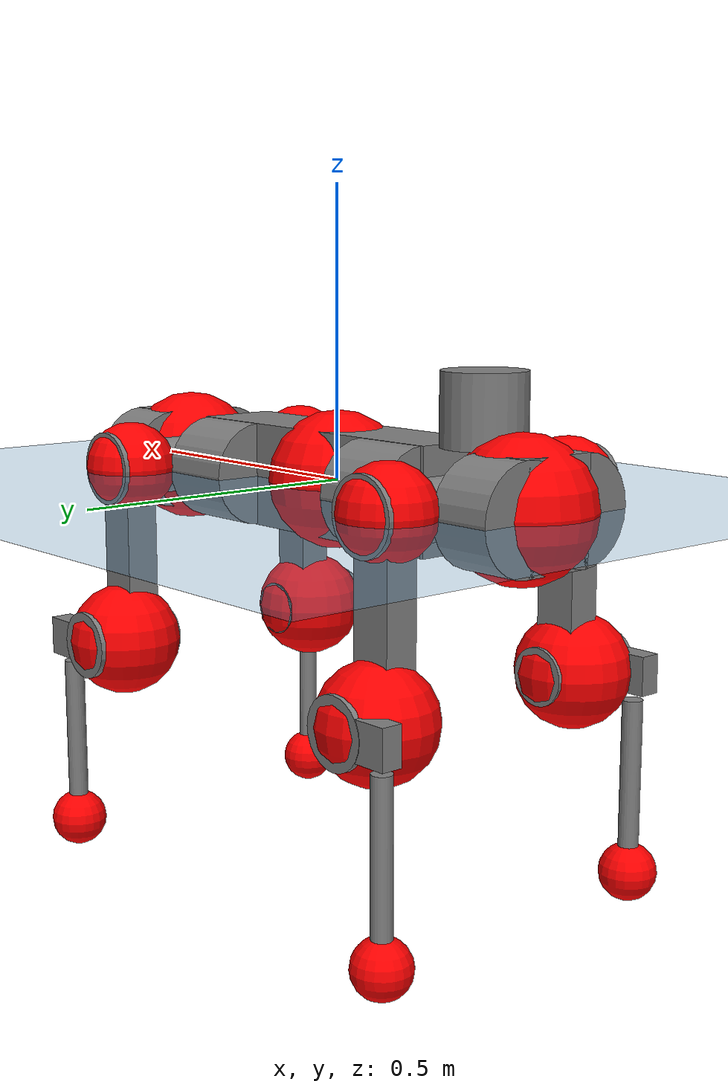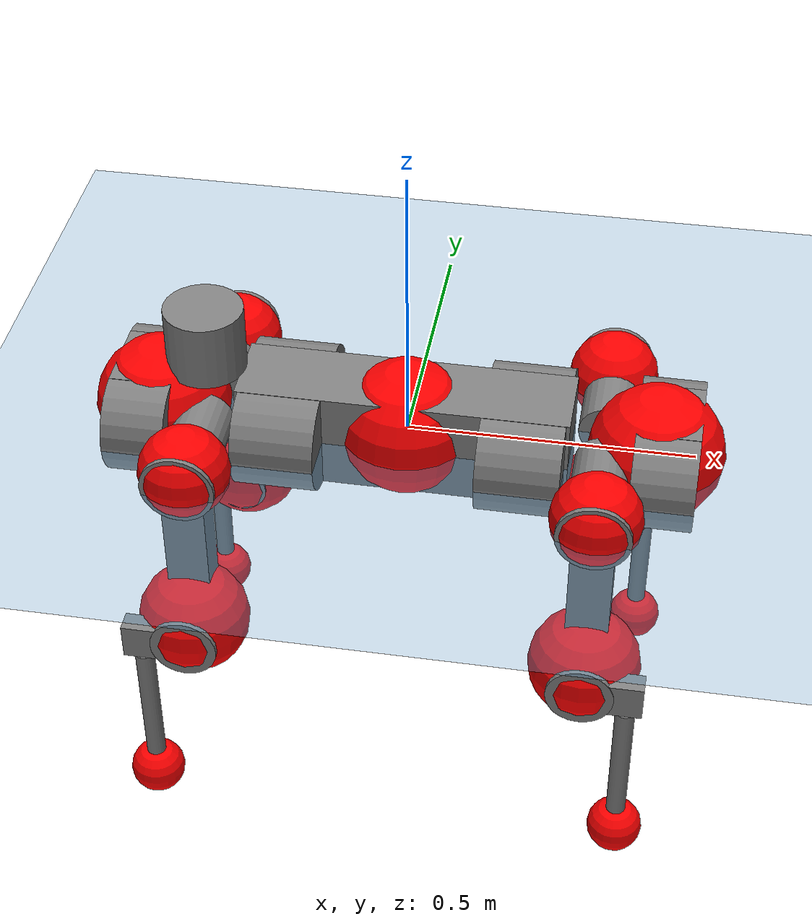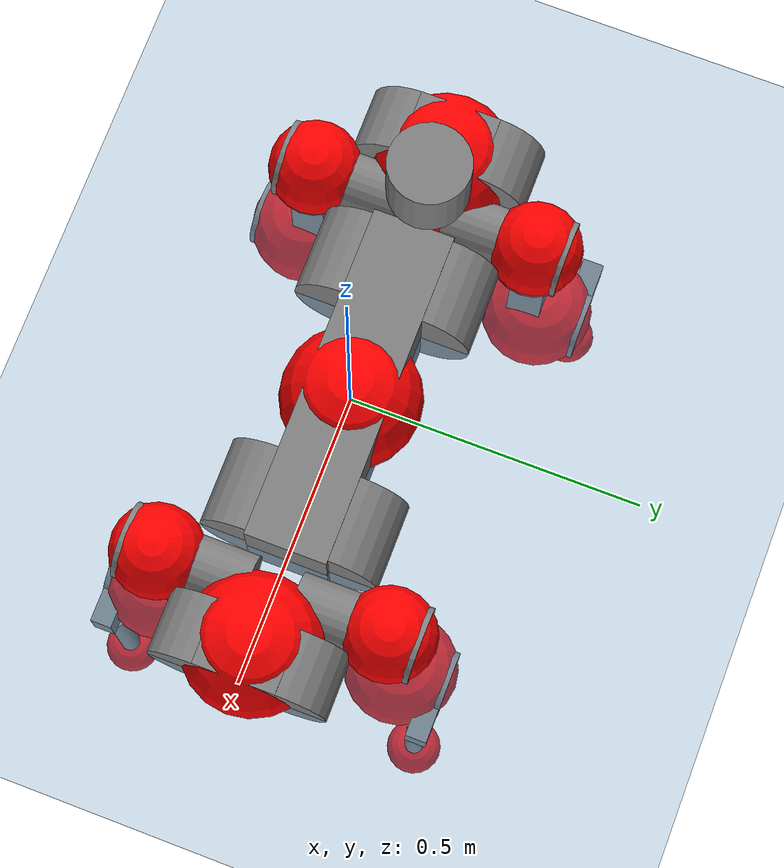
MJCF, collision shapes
<mujoco model="anymal_c">
  <compiler angle="radian" assetdir="assets" balanceinertia="true" inertiafromgeom="false"/>

  <option timestep="0.005" density="1.2" viscosity="2e-05"/>

  <size nkey="1"/>

  <visual>
    <quality shadowsize="8192"/>
    <map shadowclip="0.5"/>
  </visual>

  <default>
    <default class="/">
      <material specular="0" shininess="0.25"/>
      <geom contype="0" conaffinity="0" group="1" solref="-1000 -80"/>
      <site size="0.01 0.005 0.005" group="5"/>
      <general forcelimited="true" forcerange="-80 80" biastype="affine" gainprm="80" biasprm="0 -80 -2"/>
      <default class="anymal_c">
        <joint armature="0.01" damping="0.01" frictionloss="0.1"/>
        <default class="visual">
          <geom type="mesh" group="2"/>
          <default class="visual_zflip"/>
        </default>
        <default class="collision">
          <geom type="cylinder" group="3"/>
          <default class="foot">
            <geom size="0.03 0 0" type="sphere" condim="6" priority="1" friction="0.8 0.02 0.01" solimp="0.015 1 0.03"/>
          </default>
        </default>
      </default>
      <default class="reward_collision_sphere">
        <geom group="5" rgba="1 0 0 1"/>
      </default>
    </default>
  </default>

  <asset>
    <texture type="skybox" colorspace="auto" name="//unnamed_texture_0" builtin="gradient" rgb1="0.95 0.95 0.95" rgb2="0.95 0.95 0.95" width="100" height="600"/>
    <texture type="2d" colorspace="auto" name="texplane" builtin="checker" rgb1="0.345 0.575 0.748" rgb2="0.345 0.575 0.748" markrgb="1 1 1" width="512" height="512"/>
    <texture type="2d" colorspace="linear" name="base" file="base.png"/>
    <texture type="2d" colorspace="linear" name="top_shell" file="top_shell.png"/>
    <texture type="2d" colorspace="linear" name="bottom_shell" file="bottom_shell.png"/>
    <texture type="2d" colorspace="linear" name="remote" file="remote.png"/>
    <texture type="2d" colorspace="linear" name="hatch" file="hatch.png"/>
    <texture type="2d" colorspace="linear" name="handle" file="handle.png"/>
    <texture type="2d" colorspace="linear" name="face" file="face.png"/>
    <texture type="2d" colorspace="linear" name="battery" file="battery.png"/>
    <texture type="2d" colorspace="linear" name="lidar_cage" file="lidar_cage.png"/>
    <texture type="2d" colorspace="linear" name="depth_camera" file="depth_camera.png"/>
    <texture type="2d" colorspace="linear" name="wide_angle_camera" file="wide_angle_camera.png"/>
    <texture type="2d" colorspace="linear" name="lidar" file="lidar.png"/>
    <texture type="2d" colorspace="linear" name="drive" file="drive.png"/>
    <texture type="2d" colorspace="linear" name="hip_l" file="hip_l.png"/>
    <texture type="2d" colorspace="linear" name="shank_l" file="shank_l.png"/>
    <texture type="2d" colorspace="linear" name="foot" file="foot.png"/>
    <texture type="2d" colorspace="linear" name="thigh" file="thigh.png"/>
    <texture type="2d" colorspace="linear" name="shank_r" file="shank_r.png"/>
    <texture type="2d" colorspace="linear" name="hip_r" file="hip_r.png"/>
    <material name="MatPlane" class="/" texture="texplane" texuniform="true" texrepeat="2 2" specular="0.9" shininess="0.5"/>
    <material name="black_plastic" class="/" rgba="0.007 0.007 0.007 1"/>
    <material name="green" class="/" rgba="0.052 0.178 0.033 1"/>
    <material name="red" class="/" rgba="0.178 0.006 0.005 1"/>
    <material name="yellow" class="/" rgba="0.178 0.119 0.006 1"/>
    <material name="lwl" class="/" rgba="0.8 0.8 0.8 1"/>
    <material name="base" class="/" texture="base"/>
    <material name="top_shell" class="/" texture="top_shell"/>
    <material name="bottom_shell" class="/" texture="bottom_shell"/>
    <material name="hip_l" class="/" texture="hip_l"/>
    <material name="thigh" class="/" texture="thigh"/>
    <material name="shank_l" class="/" texture="shank_l"/>
    <material name="foot" class="/" texture="foot"/>
    <material name="hip_r" class="/" texture="hip_r"/>
    <material name="shank" class="/" texture="shank_r"/>
    <material name="hatch" class="/" texture="hatch"/>
    <material name="remote" class="/" texture="remote"/>
    <material name="handle" class="/" texture="handle"/>
    <material name="face" class="/" texture="face"/>
    <material name="depth_camera" class="/" texture="depth_camera"/>
    <material name="wide_angle_camera" class="/" texture="wide_angle_camera"/>
    <material name="battery" class="/" texture="battery"/>
    <material name="lidar_cage" class="/" texture="lidar_cage"/>
    <material name="lidar" class="/" texture="lidar"/>
    <material name="drive" class="/" texture="drive"/>
    <mesh name="base_0" class="/" file="base_0.obj"/>
    <mesh name="base_1" class="/" file="base_1.obj"/>
    <mesh name="base_2" class="/" file="base_2.obj"/>
    <mesh name="base_3" class="/" file="base_3.obj"/>
    <mesh name="base_4" class="/" file="base_4.obj"/>
    <mesh name="base_5" class="/" file="base_5.obj"/>
    <mesh name="top_shell" class="/" file="top_shell.obj"/>
    <mesh name="bottom_shell" class="/" file="bottom_shell.obj"/>
    <mesh name="remote" class="/" file="remote.obj"/>
    <mesh name="handle" class="/" file="handle.obj"/>
    <mesh name="face" class="/" file="face.obj"/>
    <mesh name="wide_angle_camera" class="/" file="wide_angle_camera.obj"/>
    <mesh name="depth_camera" class="/" file="depth_camera.obj"/>
    <mesh name="battery" class="/" file="battery.obj"/>
    <mesh name="lidar_cage" class="/" file="lidar_cage.obj"/>
    <mesh name="lidar" class="/" file="lidar.obj"/>
    <mesh name="drive" class="/" file="drive.obj"/>
    <mesh name="hip_l" class="/" file="hip_l.obj"/>
    <mesh name="thigh" class="/" file="thigh.obj"/>
    <mesh name="shank_l" class="/" file="shank_l.obj"/>
    <mesh name="foot" class="/" file="foot.obj"/>
    <mesh name="hip_r" class="/" file="hip_r.obj"/>
    <mesh name="hatch" class="/" file="hatch.obj"/>
    <mesh name="shank_r" class="/" file="shank_r.obj"/>
  </asset>

  <worldbody>
    <geom name="floor" class="/" size="100 100 0.125" type="plane" group="0" material="MatPlane"/>
    <light name="toplight_shadow" class="/" pos="0 0 5" dir="0.0990148 0.0990148 -0.990148" type="directional" ambient="0.04 0.04 0.04" diffuse="0.55 0.55 0.55" specular="0.12 0.12 0.12"/>
    <light name="toplight_fill" class="/" pos="0 0 5" dir="0.0990148 0.0990148 -0.990148" type="directional" castshadow="false" ambient="0.04 0.04 0.04" diffuse="0.3 0.3 0.3" specular="0.08 0.08 0.08"/>
    <body name="trunk" childclass="anymal_c" pos="-0.00185899 0.000494651 0.00250914" quat="0.999999 -0.000689769 0.00105879 -0.000577729">
      <inertial pos="0.00360726 -0.00092448 0.0518613" quat="0.504343 0.500084 0.501057 0.494466" mass="18.6769" diaginertia="0.53346 0.397186 0.361869"/>
      <joint name="//unnamed_joint_0" type="free" armature="0" damping="0" frictionloss="0"/>
      <geom name="//unnamed_geom_1" class="visual" material="green" mesh="base_0"/>
      <geom name="//unnamed_geom_2" class="visual" material="yellow" mesh="base_1"/>
      <geom name="//unnamed_geom_3" class="visual" material="red" mesh="base_2"/>
      <geom name="//unnamed_geom_4" class="visual" material="black_plastic" mesh="base_3"/>
      <geom name="//unnamed_geom_5" class="visual" material="lwl" mesh="base_4"/>
      <geom name="//unnamed_geom_6" class="visual" material="base" mesh="base_5"/>
      <geom name="trunk_1" class="collision" size="0.288716 0.06969 0.0896014" type="box"/>
      <geom name="trunk_2" class="collision" size="0.0896014 0.0721789" pos="0.210016 0.0639804 0" quat="0.707107 0 0.707107 0"/>
      <geom name="trunk_3" class="collision" size="0.0896014 0.0721789" pos="-0.210016 0.0639804 0" quat="0.707107 0 0.707107 0"/>
      <geom name="trunk_4" class="collision" size="0.0896014 0.0721789" pos="0.210016 -0.0639804 0" quat="0.707107 0 0.707107 0"/>
      <geom name="trunk_5" class="collision" size="0.0896014 0.0721789" pos="-0.210016 -0.0639804 0" quat="0.707107 0 0.707107 0"/>
      <geom name="//unnamed_geom_12" class="visual" material="top_shell" mesh="top_shell"/>
      <geom name="//unnamed_geom_13" class="visual" material="bottom_shell" mesh="bottom_shell"/>
      <geom name="//unnamed_geom_14" class="visual" material="remote" mesh="remote"/>
      <geom name="//unnamed_geom_15" class="visual" material="handle" mesh="handle"/>
      <geom name="//unnamed_geom_16" class="visual" pos="0.400238 0 0" quat="1 0 0 0" material="face" mesh="face"/>
      <geom name="trunk_6" class="collision" size="0.0547564 0.06969 0.0896014" pos="0.453346 0 0" type="box"/>
      <geom name="//unnamed_geom_18" class="collision" size="0.0896014 0.0547564" pos="0.453346 0.0639804 0" quat="0.707107 0 0.707107 0"/>
      <geom name="//unnamed_geom_19" class="collision" size="0.0896014 0.0547564" pos="0.453346 -0.0639804 0" quat="0.707107 0 0.707107 0"/>
      <geom name="//unnamed_geom_20" class="visual" pos="0.445772 0 -0.0334033" quat="0.965926 0 0.258819 0" material="depth_camera" mesh="depth_camera"/>
      <geom name="//unnamed_geom_21" class="visual" pos="0.495349 0 0.0165735" material="wide_angle_camera" mesh="wide_angle_camera"/>
      <geom name="//unnamed_geom_22" class="visual_zflip" pos="-0.400238 0 0" quat="0 0 0 1" material="face" mesh="face"/>
      <geom name="trunk_7" class="collision" size="0.0547564 0.06969 0.0896014" pos="-0.453346 0 0" quat="0 0 0 1" type="box"/>
      <geom name="//unnamed_geom_24" class="collision" size="0.0896014 0.0547564" pos="-0.453346 -0.0639804 0" quat="0 -0.707107 0 0.707107"/>
      <geom name="//unnamed_geom_25" class="collision" size="0.0896014 0.0547564" pos="-0.453346 0.0639804 0" quat="0 -0.707107 0 0.707107"/>
      <geom name="//unnamed_geom_26" class="visual" pos="-0.445772 0 -0.0334033" quat="0 -0.258819 0 0.965926" material="depth_camera" mesh="depth_camera"/>
      <geom name="//unnamed_geom_27" class="visual_zflip" pos="-0.495349 0 0.0165735" quat="0 0 0 1" material="wide_angle_camera" mesh="wide_angle_camera"/>
      <geom name="//unnamed_geom_28" class="visual" material="battery" mesh="battery"/>
      <geom name="//unnamed_geom_29" class="visual" pos="0 0.0692138 0.0310861" quat="0.683013 -0.183013 0.183013 0.683013" material="depth_camera" mesh="depth_camera"/>
      <geom name="//unnamed_geom_30" class="visual" pos="0 -0.0692138 0.0310861" quat="0.683013 0.183013 0.183013 -0.683013" material="depth_camera" mesh="depth_camera"/>
      <geom name="//unnamed_geom_31" class="visual" pos="-0.351476 0 0.081373" quat="1 0 0 0" material="lidar_cage" mesh="lidar_cage"/>
      <geom name="trunk_8" class="collision" size="0.06969 0.0597343" pos="-0.351476 0 0.1478"/>
      <geom name="//unnamed_geom_33" class="visual" pos="-0.351476 -2.02671e-05 0.157432" quat="0.707107 0 0 -0.707107" material="lidar" mesh="lidar"/>
      <geom name="//unnamed_geom_34" class="visual" pos="0.289581 0.0951252 -3.33117e-09" quat="0.258819 0.965926 0 0" material="drive" mesh="drive"/>
      <geom name="//unnamed_geom_35" class="visual" pos="0.289581 -0.0951252 3.33117e-09" quat="0.258819 -0.965926 0 0" material="drive" mesh="drive"/>
      <geom name="//unnamed_geom_36" class="visual" pos="-0.289581 0.0951252 3.33117e-09" quat="0 0 0.965926 -0.258819" material="drive" mesh="drive"/>
      <geom name="//unnamed_geom_37" class="visual" pos="-0.289581 -0.0951252 -3.33117e-09" quat="0 0 -0.965926 -0.258819" material="drive" mesh="drive"/>
      <geom name="//unnamed_geom_38" class="visual" pos="0.112009 0 0.0808194" quat="1 0 0 0" material="hatch" mesh="hatch"/>
      <geom name="//unnamed_geom_39" class="reward_collision_sphere" size="0.119469"/>
      <geom name="//unnamed_geom_40" class="reward_collision_sphere" size="0.119469" pos="0.434517 0 0"/>
      <geom name="//unnamed_geom_41" class="reward_collision_sphere" size="0.119469" pos="-0.434517 0 0"/>
      <site name="imu" pos="0.241306 0.00892654 0.0499789" size="0.00995571"/>
      <camera name="track" pos="0 -1.82801 0" quat="0.707107 0.707107 0 0" mode="trackcom"/>
      <camera name="ego_camera" pos="0.434517 0 -0.0442846" quat="-0.5 -0.5 0.5 0.5"/>
      <body name="LF_HIP" pos="0.288001 0.0933265 -0.00138955" quat="0.258819 0.965926 -0.000111752 -5.56574e-05">
        <inertial pos="0.0550347 -0.0156865 -0.00841159" quat="-0.12793 0.70963 -0.135673 0.67945" mass="2.88231" diaginertia="0.00495735 0.0031255 0.0055839"/>
        <joint name="LF_HAA" pos="0 0 0" axis="0.999997 1.82617e-05 0.002373" range="-0.714294 0.543796" armature="0.00945184" damping="0.0230453" frictionloss="0.0877283"/>
        <geom name="//unnamed_geom_42" class="visual" pos="0 -0.000195958 3.21859e-05" quat="0.258819 -0.965926 0 0" material="hip_l" mesh="hip_l"/>
        <geom name="//unnamed_geom_43" class="visual" pos="0.057839 -0.0694736 -0.041539" quat="0.183013 -0.683013 0.683013 0.183013" material="drive" mesh="drive"/>
        <geom name="//unnamed_geom_44" class="collision" size="0.0497786 0.06969" pos="0.057839 -0.0109313 -0.00764463" quat="-0.353553 -0.612372 0.612372 -0.353553"/>
        <body name="LF_THIGH" pos="0.055414 -0.0661484 -0.0447412" quat="0.182844 -0.683099 0.683046 0.182734">
          <inertial pos="0.0289811 8.16556e-05 -0.269238" quat="0.993121 0.00237647 -0.0841195 0.0814181" mass="2.96618" diaginertia="0.0255287 0.0193642 0.0072023"/>
          <joint name="LF_HFE" pos="0 0 0" axis="0.99999 -0.00339727 -0.00307541" stiffness="0.00267227" range="-3.12342 3.18703" armature="0.00901321" damping="0.0162351" frictionloss="0.0861551"/>
          <geom name="//unnamed_geom_45" class="visual" pos="0.00102638 1.61733e-06 0" quat="0.707107 0 0 -0.707107" material="thigh" mesh="thigh"/>
          <geom name="//unnamed_geom_46" class="collision" size="0.0647121 0.0398228" pos="0.0386237 0 0" quat="0.5 0.5 -0.5 -0.5"/>
          <geom name="//unnamed_geom_47" class="collision" size="0.0373339 0.0298671 0.140688" pos="0.0289678 0 -0.156451" quat="0.707107 0 0 -0.707107" type="box"/>
          <geom name="//unnamed_geom_48" class="visual" pos="0.0968489 0 -0.315528" quat="1 0 0 0" material="drive" mesh="drive"/>
          <geom name="//unnamed_geom_49" class="collision" size="0.0497786 0.06969" pos="0.0292574 0 -0.315528" quat="0.707107 0 0.707107 0"/>
          <geom name="//unnamed_geom_50" class="reward_collision_sphere" size="0.0796457" pos="0.0241398 0 0"/>
          <body name="LF_SHANK" pos="0.0957951 0.000956502 -0.314152" quat="1 0.000129963 0.000879678 -9.2251e-05">
            <inertial pos="0.00519945 -0.0545503 -0.0921165" quat="0.992588 -0.119026 -0.00246548 -0.0243988" mass="0.574992" diaginertia="0.00830049 0.00580075 0.00187162"/>
            <joint name="LF_KFE" pos="0 0 0" axis="1 -0.000818819 -0.000276199" range="-3.09155 3.13336" armature="0.0111098" damping="0.00655514" frictionloss="0.0967503"/>
            <geom name="//unnamed_geom_51" class="visual" pos="0.000334679 0.00178453 0" quat="0.707107 0 0 -0.707107" material="shank_l" mesh="shank_l"/>
            <geom name="LF_kfe_act" class="collision" size="0.0597343 0.0199114" pos="0.0193118 0 0" quat="0.5 0.5 -0.5 -0.5"/>
            <geom name="//unnamed_geom_53" class="collision" size="0.0572443 0.0336005 0.0189158" pos="0.0193118 -0.0525544 0" quat="0.5 0.5 -0.5 -0.5" type="box"/>
            <geom name="//unnamed_geom_54" class="visual" pos="0.0126009 -0.0798117 -0.374172" quat="0.382683 0 0 -0.92388" material="foot" mesh="foot"/>
            <geom name="LF_calf" class="collision" size="0.0174225 0.140626" pos="0.012601 -0.0803868 -0.187086" quat="0.707107 0 0 -0.707107"/>
            <geom name="LF_foot" class="foot" size="0.0299113" pos="0.012601 -0.0803868 -0.349262" quat="0.707107 0 0 -0.707107"/>
            <geom name="//unnamed_geom_57" class="reward_collision_sphere" size="0.0995571" pos="-0.0482796 0 0"/>
            <geom name="//unnamed_geom_58" class="reward_collision_sphere" size="0.0497786" pos="0.012601 -0.0803868 -0.349262"/>
            <site name="LF_foot" class="foot" pos="0.012601 -0.0803868 -0.349262" quat="0.707107 0 0 -0.707107" size="0.00995571"/>
          </body>
        </body>
      </body>
      <body name="RF_HIP" pos="0.289735 -0.0955399 -0.00166306" quat="0.258794 -0.965933 -0.000107137 -2.05261e-06">
        <inertial pos="0.0522995 0.015473 -0.0116499" quat="0.13765 0.677801 0.127106 0.710973" mass="2.79125" diaginertia="0.0048599 0.00317834 0.00538802"/>
        <joint name="RF_HAA" pos="0 0 0" axis="0.999977 0.00427373 0.00522534" range="-0.482911 0.71129" armature="0.00992078" damping="0.00199357" frictionloss="0.112468"/>
        <geom name="//unnamed_geom_59" class="visual" pos="0 0.000195956 3.21858e-05" quat="0.258819 0.965926 0 0" material="hip_r" mesh="hip_r"/>
        <geom name="//unnamed_geom_60" class="visual" pos="0.057839 0.0694736 -0.041539" quat="0.183013 0.683013 0.683013 -0.183013" material="drive" mesh="drive"/>
        <geom name="//unnamed_geom_61" class="collision" size="0.0497786 0.06969" pos="0.057839 0.0109313 -0.00764463" quat="-0.353553 0.612372 0.612372 0.353553"/>
        <body name="RF_THIGH" pos="0.0607731 0.0637331 -0.0473849" quat="0.182593 0.683212 0.682946 -0.182935">
          <inertial pos="0.0299226 -0.00237289 -0.274552" quat="0.991537 -0.00149791 -0.0932192 0.0903413" mass="3.05377" diaginertia="0.0242714 0.0185071 0.00688306"/>
          <joint name="RF_HFE" pos="0 0 0" axis="0.999999 0.00125375 -0.000523446" range="-3.09405 3.12006" armature="0.00885239" damping="0.0111323" frictionloss="0.113204"/>
          <geom name="//unnamed_geom_62" class="visual" pos="0.00102638 1.61733e-06 0" quat="0.707107 0 0 -0.707107" material="thigh" mesh="thigh"/>
          <geom name="//unnamed_geom_63" class="collision" size="0.0647121 0.0398228" pos="0.0386237 0 0" quat="0.5 0.5 0.5 0.5"/>
          <geom name="//unnamed_geom_64" class="collision" size="0.0373339 0.0298671 0.140688" pos="0.0289678 0 -0.156451" quat="0.707107 0 0 0.707107" type="box"/>
          <geom name="//unnamed_geom_65" class="visual" pos="0.0968489 0 -0.315528" quat="1 0 0 0" material="drive" mesh="drive"/>
          <geom name="//unnamed_geom_66" class="collision" size="0.0497786 0.06969" pos="0.0292574 0 -0.315528" quat="0.707107 0 0.707107 0"/>
          <geom name="//unnamed_geom_67" class="reward_collision_sphere" size="0.0796457" pos="0.0241398 0 0"/>
          <body name="RF_SHANK" pos="0.0937969 0.000453847 -0.316551" quat="0.999999 0.00134436 -5.47223e-05 2.68158e-05">
            <inertial pos="0.0035704 0.0559074 -0.089237" quat="0.992662 0.118011 -0.00140892 0.0263266" mass="0.612729" diaginertia="0.00901017 0.00580913 0.00190749"/>
            <joint name="RF_KFE" pos="0 0 0" axis="0.999956 -0.00476966 0.00812769" range="-3.14057 3.0853" armature="0.0108394" damping="0.00841086" frictionloss="0.113424"/>
            <geom name="//unnamed_geom_68" class="visual" pos="0.000334677 -0.00178452 0" quat="0.707107 0 0 0.707107" material="shank" mesh="shank_r"/>
            <geom name="RF_kfe_act" class="collision" size="0.0597343 0.0199114" pos="0.0193118 0 0" quat="0.5 0.5 0.5 0.5"/>
            <geom name="//unnamed_geom_70" class="collision" size="0.0572443 0.0336005 0.0189158" pos="0.0193118 0.0525544 0" quat="0.5 0.5 0.5 0.5" type="box"/>
            <geom name="//unnamed_geom_71" class="visual" pos="0.0126011 0.0798117 -0.374172" quat="0.382683 0 0 0.92388" material="foot" mesh="foot"/>
            <geom name="RF_calf" class="collision" size="0.0174225 0.140626" pos="0.012601 0.0803868 -0.187086" quat="0.707107 0 0 0.707107"/>
            <geom name="RF_foot" class="foot" size="0.0279438" pos="0.012601 0.0803868 -0.349262" quat="0.707107 0 0 0.707107"/>
            <geom name="//unnamed_geom_74" class="reward_collision_sphere" size="0.0995571" pos="-0.0482796 0 0"/>
            <geom name="//unnamed_geom_75" class="reward_collision_sphere" size="0.0497786" pos="0.012601 0.0803868 -0.349262"/>
            <site name="RF_foot" class="foot" pos="0.012601 0.0803868 -0.349262" quat="0.707107 0 0 0.707107" size="0.00995571"/>
          </body>
        </body>
      </body>
      <body name="LH_HIP" pos="-0.288532 0.0933725 -0.000760935" quat="-0.000322189 -0.000662866 0.9659 -0.258914">
        <inertial pos="0.0551162 0.0161105 -0.00892864" quat="0.134045 0.67353 0.127204 0.715688" mass="2.75041" diaginertia="0.00482662 0.00307989 0.00528124"/>
        <joint name="LH_HAA" pos="0 0 0" axis="0.999966 0.00515546 -0.0063592" range="-0.479896 0.775038" armature="0.0101635" damping="0.0075262" frictionloss="0.100816"/>
        <geom name="//unnamed_geom_76" class="visual" pos="0 0.000195956 3.21858e-05" quat="-0.258819 -0.965926 0 0" material="hip_r" mesh="hip_r"/>
        <geom name="//unnamed_geom_77" class="visual" pos="0.057839 0.0694736 -0.041539" quat="0.183013 0.683013 0.683013 -0.183013" material="drive" mesh="drive"/>
        <geom name="//unnamed_geom_78" class="collision" size="0.0497786 0.06969" pos="0.057839 0.0109313 -0.00764463" quat="-0.353553 0.612372 0.612372 0.353553"/>
        <body name="LH_THIGH" pos="0.0576377 0.0645267 -0.0439785" quat="0.182763 0.682882 0.682955 -0.183963">
          <inertial pos="0.0309737 0.0023066 -0.271653" quat="0.992842 -0.00621409 -0.0795091 0.088902" mass="2.84613" diaginertia="0.024936 0.0190553 0.00698813"/>
          <joint name="LH_HFE" pos="0 0 0" axis="0.999999 0.00147682 0.000245421" range="-3.19769 3.0916" armature="0.0105115" damping="0" frictionloss="0.0979902"/>
          <geom name="//unnamed_geom_79" class="visual" pos="0.00102638 1.61733e-06 0" quat="0.707107 0 0 -0.707107" material="thigh" mesh="thigh"/>
          <geom name="//unnamed_geom_80" class="collision" size="0.0647121 0.0398228" pos="0.0386237 0 0" quat="0.5 0.5 -0.5 -0.5"/>
          <geom name="//unnamed_geom_81" class="collision" size="0.0373339 0.0298671 0.140688" pos="0.0289678 0 -0.156451" quat="0.707107 0 0 -0.707107" type="box"/>
          <geom name="//unnamed_geom_82" class="visual" pos="0.0968489 0 -0.315528" quat="1 0 0 0" material="drive" mesh="drive"/>
          <geom name="//unnamed_geom_83" class="collision" size="0.0497786 0.06969" pos="0.0292574 0 -0.315528" quat="0.707107 0 0.707107 0"/>
          <geom name="//unnamed_geom_84" class="reward_collision_sphere" size="0.0796457" pos="0.0241398 0 0"/>
          <body name="LH_SHANK" pos="0.0949023 0.00194682 -0.318931" quat="1 1.45085e-05 3.11787e-08 1.41339e-05">
            <inertial pos="0.008075 0.0567886 -0.0916234" quat="0.994138 0.106815 -0.00124309 0.0167178" mass="0.57006" diaginertia="0.00814495 0.00586811 0.00188269"/>
            <joint name="LH_KFE" pos="0 0 0" axis="0.999998 0.00185268 -0.000200498" stiffness="0.00694653" range="-3.12042 3.09429" armature="0.0100365" damping="0.00929805" frictionloss="0.0927665"/>
            <geom name="//unnamed_geom_85" class="visual" pos="0.000334677 -0.00178452 0" quat="-0.707107 0 0 -0.707107" material="shank" mesh="shank_r"/>
            <geom name="LH_kfe_act" class="collision" size="0.0597343 0.0199114" pos="0.0193118 0 0" quat="0.5 0.5 -0.5 -0.5"/>
            <geom name="//unnamed_geom_87" class="collision" size="0.0572443 0.0336005 0.0189158" pos="0.0193118 0.0525544 0" quat="0.5 0.5 -0.5 -0.5" type="box"/>
            <geom name="//unnamed_geom_88" class="visual" pos="0.0126011 0.0798117 -0.374172" quat="-0.382683 0 0 -0.92388" material="foot" mesh="foot"/>
            <geom name="LH_calf" class="collision" size="0.0174225 0.140626" pos="0.012601 0.0803868 -0.187086" quat="0.707107 0 0 -0.707107"/>
            <geom name="LH_foot" class="foot" size="0.035035" pos="0.012601 0.0803868 -0.349262" quat="0.707107 0 0 -0.707107"/>
            <geom name="//unnamed_geom_91" class="reward_collision_sphere" size="0.0995571" pos="-0.0482796 0 0"/>
            <geom name="//unnamed_geom_92" class="reward_collision_sphere" size="0.0497786" pos="0.012601 0.0803868 -0.349262"/>
            <site name="LH_foot" class="foot" pos="0.012601 0.0803868 -0.349262" quat="0.707107 0 0 -0.707107" size="0.00995571"/>
          </body>
        </body>
      </body>
      <body name="RH_HIP" pos="-0.290734 -0.0951531 0.00277417" quat="-7.11921e-06 1.26925e-05 -0.96594 -0.258767">
        <inertial pos="0.0520836 -0.0113426 -0.00902309" quat="-0.126093 0.707786 -0.142046 0.680413" mass="2.82377" diaginertia="0.00500319 0.00315365 0.0055193"/>
        <joint name="RH_HAA" pos="0 0 0" axis="0.999998 -0.00130104 0.00177873" range="-0.734806 0.547995" armature="0.00856438" damping="0" frictionloss="0.100909"/>
        <geom name="//unnamed_geom_93" class="visual" pos="0 -0.000195958 3.21859e-05" quat="-0.258819 0.965926 0 0" material="hip_l" mesh="hip_l"/>
        <geom name="//unnamed_geom_94" class="visual" pos="0.057839 -0.0694736 -0.041539" quat="-0.183013 0.683013 -0.683013 -0.183013" material="drive" mesh="drive"/>
        <geom name="//unnamed_geom_95" class="collision" size="0.0497786 0.06969" pos="0.057839 -0.0109313 -0.00764463" quat="0.353553 0.612372 -0.612372 0.353553"/>
        <body name="RH_THIGH" pos="0.0573553 -0.0637418 -0.0465196" quat="-0.18276 0.682838 -0.683363 -0.18261">
          <inertial pos="0.0289964 0.00257601 -0.27013" quat="0.993348 -0.00371695 -0.0787609 0.0839177" mass="2.86392" diaginertia="0.0240128 0.0186047 0.00672864"/>
          <joint name="RH_HFE" pos="0 0 0" axis="0.999983 0.00572879 -0.00134128" range="-3.08864 3.10381" armature="0.00952446" damping="0.020403" frictionloss="0.0982229"/>
          <geom name="//unnamed_geom_96" class="visual" pos="0.00102638 1.61733e-06 0" quat="0.707107 0 0 -0.707107" material="thigh" mesh="thigh"/>
          <geom name="//unnamed_geom_97" class="collision" size="0.0647121 0.0398228" pos="0.0386237 0 0" quat="0.5 0.5 0.5 0.5"/>
          <geom name="//unnamed_geom_98" class="collision" size="0.0373339 0.0298671 0.140688" pos="0.0289678 0 -0.156451" quat="0.707107 0 0 0.707107" type="box"/>
          <geom name="//unnamed_geom_99" class="visual" pos="0.0968489 0 -0.315528" quat="1 0 0 0" material="drive" mesh="drive"/>
          <geom name="//unnamed_geom_100" class="collision" size="0.0497786 0.06969" pos="0.0292574 0 -0.315528" quat="0.707107 0 0.707107 0"/>
          <geom name="//unnamed_geom_101" class="reward_collision_sphere" size="0.0796457" pos="0.0241398 0 0"/>
          <body name="RH_SHANK" pos="0.097381 0.00132033 -0.317524" quat="1 8.39147e-05 4.93697e-05 -7.65637e-05">
            <inertial pos="0.00681179 -0.0586346 -0.0873567" quat="0.99283 -0.118179 -0.00450651 -0.017371" mass="0.574544" diaginertia="0.0083203 0.00588532 0.00180755"/>
            <joint name="RH_KFE" pos="0 0 0" axis="0.999911 0.00917528 -0.00963433" range="-3.12303 3.14861" armature="0.00982975" damping="0.00899948" frictionloss="0.113375"/>
            <geom name="//unnamed_geom_102" class="visual" pos="0.000334679 0.00178453 0" quat="0.707107 0 0 -0.707107" material="shank_l" mesh="shank_l"/>
            <geom name="RH_kfe_act" class="collision" size="0.0597343 0.0199114" pos="0.0193118 0 0" quat="0.5 0.5 0.5 0.5"/>
            <geom name="//unnamed_geom_104" class="collision" size="0.0572443 0.0336005 0.0189158" pos="0.0193118 -0.0525544 0" quat="0.5 0.5 0.5 0.5" type="box"/>
            <geom name="//unnamed_geom_105" class="visual" pos="0.0126009 -0.0798117 -0.374172" quat="0.382683 0 0 -0.92388" material="foot" mesh="foot"/>
            <geom name="RH_calf" class="collision" size="0.0174225 0.140626" pos="0.012601 -0.0803868 -0.187086" quat="0.707107 0 0 0.707107"/>
            <geom name="RH_foot" class="foot" size="0.0264138" pos="0.012601 -0.0803868 -0.349262" quat="0.707107 0 0 0.707107"/>
            <geom name="//unnamed_geom_108" class="reward_collision_sphere" size="0.0995571" pos="-0.0482796 0 0"/>
            <geom name="//unnamed_geom_109" class="reward_collision_sphere" size="0.0497786" pos="0.012601 -0.0803868 -0.349262"/>
            <site name="RH_foot" class="foot" pos="0.012601 -0.0803868 -0.349262" quat="0.707107 0 0 0.707107" size="0.00995571"/>
          </body>
        </body>
      </body>
    </body>
  </worldbody>

  <contact>
    <pair class="/" geom1="floor" geom2="LF_foot" name="//unnamed_contact_0"/>
    <pair class="/" geom1="floor" geom2="RF_foot" name="//unnamed_contact_1"/>
    <pair class="/" geom1="floor" geom2="LH_foot" name="//unnamed_contact_2"/>
    <pair class="/" geom1="floor" geom2="RH_foot" name="//unnamed_contact_3"/>
  </contact>

  <actuator>
    <general name="LF_HAA" class="/" joint="LF_HAA" forcerange="-74.6977 74.6977" gainprm="74.1833" biasprm="0 -74.1833 -1.89218"/>
    <general name="LF_HFE" class="/" joint="LF_HFE" forcerange="-80.0106 80.0106" gainprm="74.1833" biasprm="0 -74.1833 -1.89218"/>
    <general name="LF_KFE" class="/" joint="LF_KFE" forcerange="-72.9885 72.9885" gainprm="74.1833" biasprm="0 -74.1833 -1.89218"/>
    <general name="RF_HAA" class="/" joint="RF_HAA" forcerange="-77.0575 77.0575" gainprm="74.1833" biasprm="0 -74.1833 -1.89218"/>
    <general name="RF_HFE" class="/" joint="RF_HFE" forcerange="-87.0199 87.0199" gainprm="74.1833" biasprm="0 -74.1833 -1.89218"/>
    <general name="RF_KFE" class="/" joint="RF_KFE" forcerange="-76.6492 76.6492" gainprm="74.1833" biasprm="0 -74.1833 -1.89218"/>
    <general name="LH_HAA" class="/" joint="LH_HAA" forcerange="-78.6209 78.6209" gainprm="74.1833" biasprm="0 -74.1833 -1.89218"/>
    <general name="LH_HFE" class="/" joint="LH_HFE" forcerange="-73.8577 73.8577" gainprm="74.1833" biasprm="0 -74.1833 -1.89218"/>
    <general name="LH_KFE" class="/" joint="LH_KFE" forcerange="-88.968 88.968" gainprm="74.1833" biasprm="0 -74.1833 -1.89218"/>
    <general name="RH_HAA" class="/" joint="RH_HAA" forcerange="-80.8972 80.8972" gainprm="74.1833" biasprm="0 -74.1833 -1.89218"/>
    <general name="RH_HFE" class="/" joint="RH_HFE" forcerange="-82.9623 82.9623" gainprm="74.1833" biasprm="0 -74.1833 -1.89218"/>
    <general name="RH_KFE" class="/" joint="RH_KFE" forcerange="-84.3842 84.3842" gainprm="74.1833" biasprm="0 -74.1833 -1.89218"/>
  </actuator>

  <sensor>
    <gyro site="imu" name="imu_angular_velocity"/>
    <velocimeter site="imu" name="imu_linear_velocity"/>
    <framelinvel objtype="site" objname="LF_foot" name="LF_foot_global_linear_velocity"/>
    <framelinvel objtype="site" objname="RF_foot" name="RF_foot_global_linear_velocity"/>
    <framelinvel objtype="site" objname="LH_foot" name="LH_foot_global_linear_velocity"/>
    <framelinvel objtype="site" objname="RH_foot" name="RH_foot_global_linear_velocity"/>
  </sensor>

  <keyframe>
    <key name="home" qpos="0 0 0.55 1 0 0 0 0 0.4 -0.8 0 -0.4 0.8 0 -0.4 0.8 0 0.4 -0.8"/>
  </keyframe>
</mujoco>
